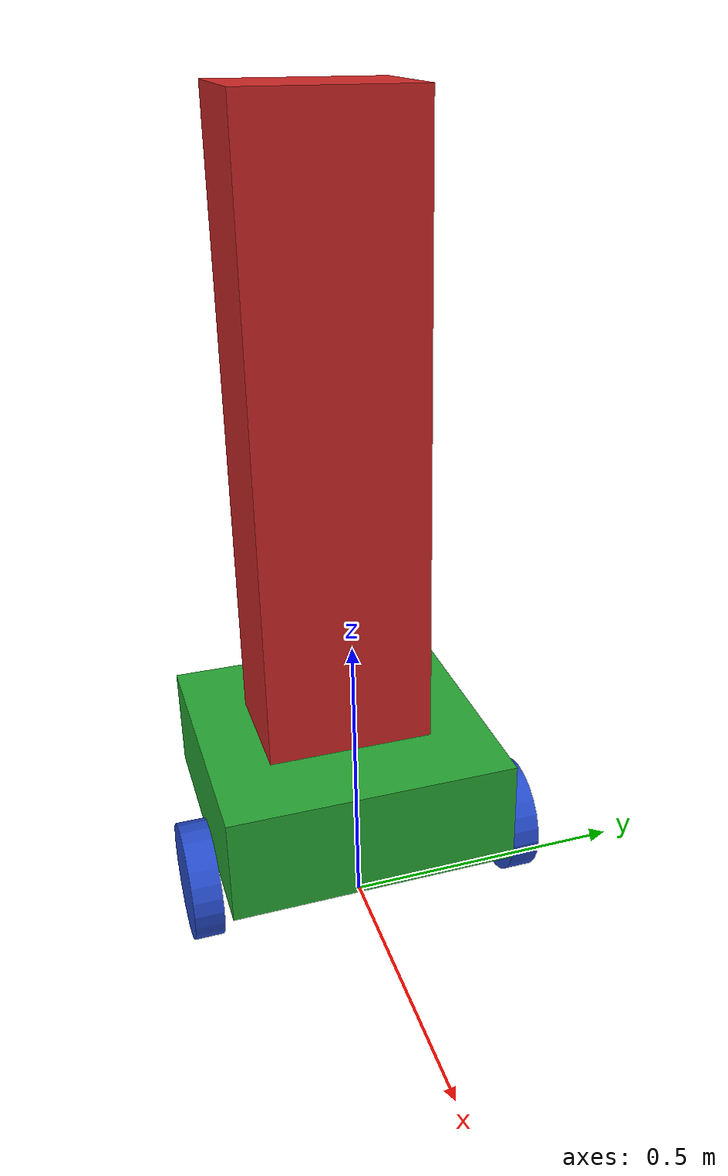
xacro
<?xml version="1.0"?>
<robot xmlns:xacro="http://www.ros.org/wiki/xacro">

    <!--Dinamic
    var using xacro-->
    <xacro:property name="base_length" value="0.5" />
    <xacro:property name="base_width" value="0.5" />
    <xacro:property name="base_height" value="0.19" />
    <!-- v1 (robot_fablab) wheel geometry -->
    <xacro:property name="wheel_radius" value="0.1" />
    <xacro:property name="wheel_length" value="0.05" />
    <xacro:property name="wheel_separation" value="0.57" />
    <xacro:property name="upper_base_length" value="0.21" />
    <xacro:property name="upper_base_width" value="0.29" />
    <xacro:property name="upper_base_height" value="1.064"/>

    <!-- Define links -->
    <link name="base_footprint" />

    <link name="base_link">
        <visual>
            <geometry>
                <box size="${base_length} ${base_width} ${base_height}" />
            </geometry>
            <origin xyz="${-base_length / 4.0} 0 ${base_height/2.0}" rpy="0 0 0" />
            <material name="green" />
        </visual>

        <collision>
            <geometry>
                <box size="${base_length} ${base_width} ${base_height}" />
            </geometry>
            <origin xyz="0 0 ${base_height/2.0}" rpy="0 0 0" />
            <material name="green" />
        </collision>

        <xacro:box_inertia m="5.0" l="${base_length}" w="${base_width}" h="${base_height}"
            xyz="0 0 ${base_height/2.0}" rpy="0 0 0" />
    </link>

    <link name="upper_base_link">
        <visual>
            <geometry>
                <box size="${upper_base_length} ${upper_base_width} ${upper_base_height}" />
            </geometry>
            <origin xyz="0 0 0" rpy="0 0 0" />
            <material name="red" />
        </visual>

        <collision>
            <geometry>
                <box size="${upper_base_length} ${upper_base_width} ${upper_base_height}" />
            </geometry>
            <origin xyz="0 0 0" rpy="0 0 0" />
        </collision>

        <xacro:box_inertia m="5.0" l="${upper_base_length}" w="${upper_base_width}" h="${upper_base_height}"
            xyz="0 0 ${base_height + upper_base_height / 2.0}" rpy="0 0 0" />
    </link>
    <!--Function
    with xacro-->
    <xacro:macro name="wheel_link" params="prefix">
        <link name="${prefix}_wheel_link">
            <visual>
                <geometry>
                    <cylinder radius="${wheel_radius}" length="${wheel_length}" />
                </geometry>
                <origin xyz="0 0 0" rpy="${pi/2.0} 0 0" />
                <material name="blue" />
            </visual>

            <collision>
                <geometry>
                    <cylinder radius="${wheel_radius}" length="${wheel_length}" />
                </geometry>
                <origin xyz="0 0 0" rpy="${pi/2.0} 0 0" />
            </collision>
            <xacro:cylinder_inertia m="1.0" h="${wheel_length}" r="${wheel_radius}"
                xyz="0 0 0" rpy="${pi/2.0} 0 0" />
        </link>
    </xacro:macro>

    <!-- Use the macro to create wheel links -->
    <xacro:wheel_link prefix="right" />
    <xacro:wheel_link prefix="left" />

    <link name="caster_wheel_link">
        <visual>
            <geometry>
                <sphere radius="${wheel_radius / 2.0}" />
            </geometry>
            <origin xyz="0 0 0" rpy="0 0 0" />
            <material name="red" />
        </visual>
        <collision>
            <geometry>
                <sphere radius="${wheel_radius / 2.0}" />
            </geometry>
            <origin xyz="0 0 0" rpy="0 0 0" />
        </collision>
        <xacro:shpere_inertia m="5.0" r="${wheel_radius / 2.0}"
            xyz="0 0 0" rpy="0 0 0" />
    </link>

    <!-- Define joints -->
    <joint name="base_joint" type="fixed">
        <parent link="base_footprint" />
        <child link="base_link" />
        <origin xyz="0 0 ${wheel_radius}" rpy="0 0 0" />
    </joint>

    <joint name="base_right_wheel_joint" type="continuous">
        <parent link="base_link" />
        <child link="right_wheel_link" />
        <origin xyz="0 ${-wheel_separation / 2.0} 0" rpy="0 0 0" />
        <axis xyz="0 1 0" />
    </joint>

    <joint name="base_left_wheel_joint" type="continuous">
        <parent link="base_link" />
        <child link="left_wheel_link" />
        <origin xyz="0 ${wheel_separation / 2.0} 0" rpy="0 0 0" />
        <axis xyz="0 1 0" />
    </joint>

    <joint name="base_caster_wheel_joint" type="fixed">
        <parent link="base_link" />
        <child link="caster_wheel_link" />
        <origin xyz="${-base_length / 4.0 - base_length / 3.0} 0 ${-wheel_radius / 2.0}" rpy="0 0 0" />
        <axis xyz="0 1 0" />
    </joint>

    <joint name="upper_base_joint" type="fixed">
        <parent link="base_link" />
        <child link="upper_base_link" />
        <origin xyz="${-base_length / 4.0} 0 ${base_height + upper_base_height / 2.0}" rpy="0 0 0" />
    </joint>

</robot>
